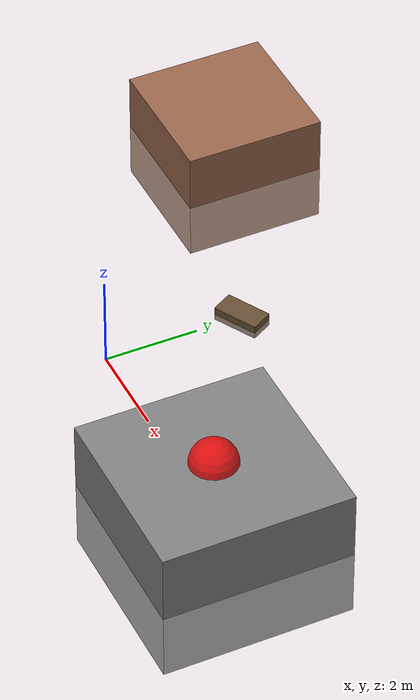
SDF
<?xml version="1.0" ?>
<sdf version="1.6">
  <world name="crew_emergency">

    <!-- Physics -->
    <physics type="ode">
      <real_time_update_rate>1000.0</real_time_update_rate>
      <max_step_size>0.001</max_step_size>
    </physics>

    <!-- Lighting -->
    <include>
      <uri>model://sun</uri>
    </include>

    <!-- Ground -->
    <include>
      <uri>model://ground_plane</uri>
    </include>

    <!-- Emergency Scene - Buildings -->
    <model name="building_1">
      <pose>5 0 0 0 0 0</pose>
      <static>true</static>
      <link name="link">
        <collision name="collision">
          <geometry>
            <box>
              <size>4 4 3</size>
            </box>
          </geometry>
        </collision>
        <visual name="visual">
          <geometry>
            <box>
              <size>4 4 3</size>
            </box>
          </geometry>
          <material>
            <ambient>0.5 0.5 0.5 1</ambient>
            <diffuse>0.5 0.5 0.5 1</diffuse>
          </material>
        </visual>
      </link>
    </model>

    <model name="building_2">
      <pose>-5 5 0 0 0 0</pose>
      <static>true</static>
      <link name="link">
        <collision name="collision">
          <geometry>
            <box>
              <size>3 3 2.5</size>
            </box>
          </geometry>
        </collision>
        <visual name="visual">
          <geometry>
            <box>
              <size>3 3 2.5</size>
            </box>
          </geometry>
          <material>
            <ambient>0.6 0.4 0.3 1</ambient>
            <diffuse>0.6 0.4 0.3 1</diffuse>
          </material>
        </visual>
      </link>
    </model>

    <!-- Debris/Obstacles -->
    <model name="debris_1">
      <pose>0 3 0 0 0 0.5</pose>
      <static>true</static>
      <link name="link">
        <collision name="collision">
          <geometry>
            <box>
              <size>1 0.5 0.3</size>
            </box>
          </geometry>
        </collision>
        <visual name="visual">
          <geometry>
            <box>
              <size>1 0.5 0.3</size>
            </box>
          </geometry>
          <material>
            <ambient>0.4 0.3 0.2 1</ambient>
            <diffuse>0.4 0.3 0.2 1</diffuse>
          </material>
        </visual>
      </link>
    </model>

    <!-- Fire marker (red sphere to represent emergency) -->
    <model name="fire_location">
      <pose>5 0 1.5 0 0 0</pose>
      <static>true</static>
      <link name="link">
        <visual name="visual">
          <geometry>
            <sphere>
              <radius>0.5</radius>
            </sphere>
          </geometry>
          <material>
            <ambient>1 0 0 0.8</ambient>
            <diffuse>1 0 0 0.8</diffuse>
            <emissive>0.8 0 0 1</emissive>
          </material>
        </visual>
      </link>
    </model>

  </world>
</sdf>
